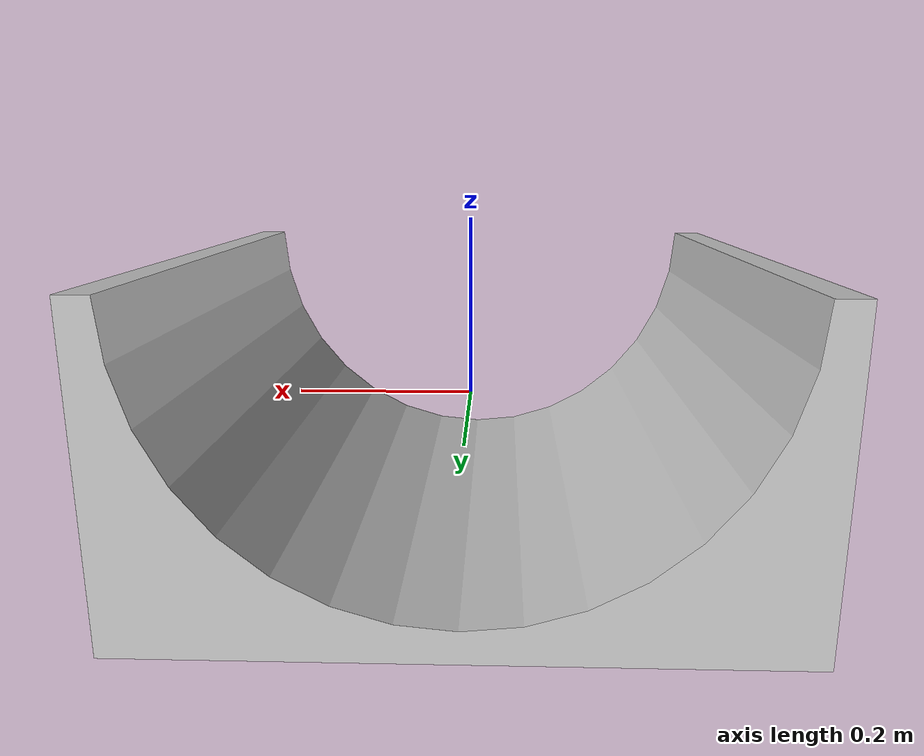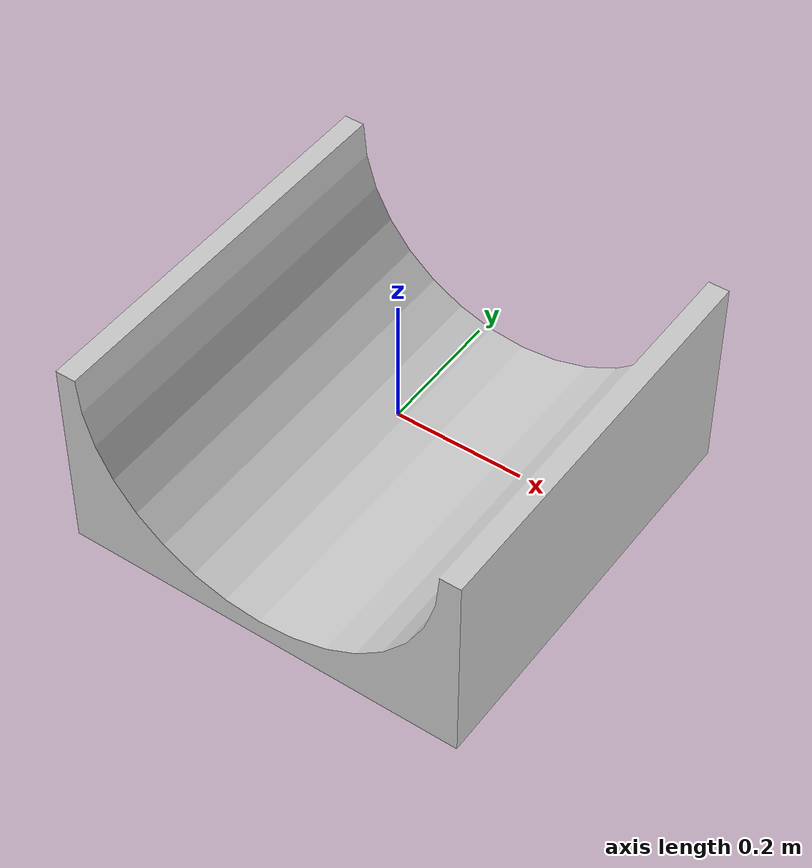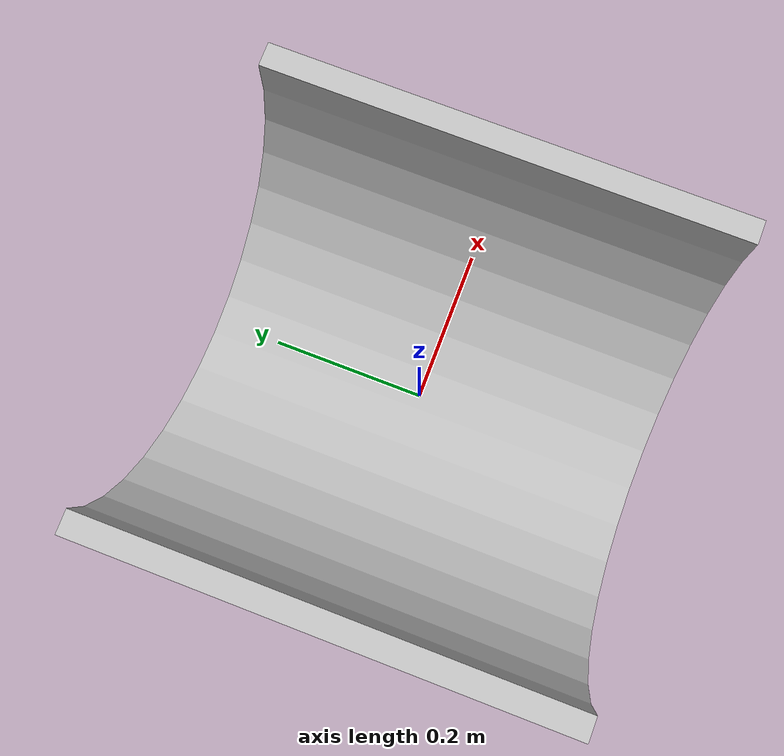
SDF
<?xml version="1.0" ?>
<sdf version="1.5">
  <model name="rampa_dupla_2">
    <link name="link">
      <collision name="collision">
        <geometry>
          <mesh>
            <scale>0.16 0.16 0.16</scale>
            <uri>model://rampa_dupla_2/meshes/rampa_dupla_2.stl</uri>
          </mesh>
        </geometry>
      </collision>
      <visual name="visual">
        <geometry>
          <mesh>
            <scale>0.16 0.16 0.16</scale>
            <uri>model://rampa_dupla_2/meshes/rampa_dupla_2.dae</uri>
          </mesh>
        </geometry>
      </visual>
    </link>
  </model>
</sdf>
